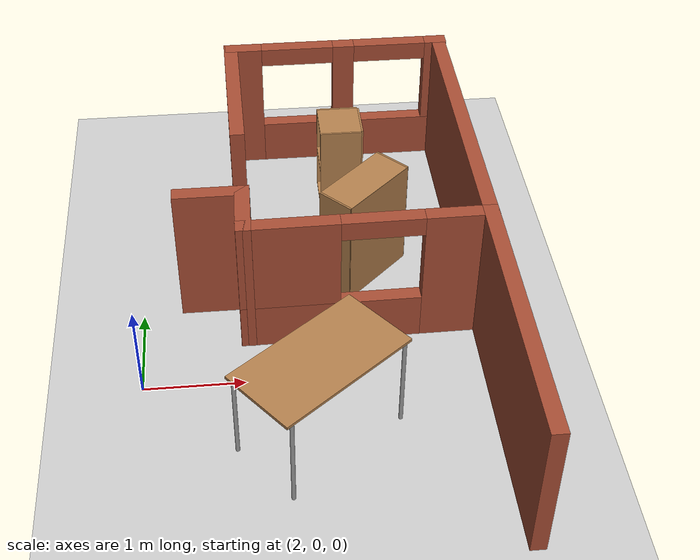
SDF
<sdf version="1.7">
 <world name="default">
  <model name="ground_plane">
   <static>1</static>
   <link name="link">
    <collision name="collision">
     <geometry><plane><normal>0 0 1</normal><size>100 100</size></plane></geometry>
     <surface><friction><ode><mu>100</mu><mu2>50</mu2></ode></friction></surface>
    </collision>
    <visual name="visual">
     <cast_shadows>0</cast_shadows>
     <geometry><plane><normal>0 0 1</normal><size>100 100</size></plane></geometry>
     <material>
      <script><uri>file://media/materials/scripts/gazebo.material</uri><name>Gazebo/Grey</name></script>
     </material>
    </visual>
   </link>
  </model>
  <model name="floorplan">
   <link name="Wall_63">
    <pose>0.045164 0.891664 0 0 -0 1.57834</pose>
    <visual name="Wall_63_Visual">
     <pose>0 0 0.75 0 -0 0</pose>
     <geometry><box><size>1.73707 0.15 1.5</size></box></geometry>
     <material>
      <script><uri>file://media/materials/scripts/gazebo.material</uri><name>Gazebo/Bricks</name></script>
      <ambient>1 1 1 1</ambient>
      <shader type="pixel"/>
     </material>
     <meta><layer>0</layer></meta>
    </visual>
    <collision name="Wall_63_Collision">
     <pose>0 0 0.75 0 -0 0</pose>
     <geometry><box><size>1.73707 0.15 1.5</size></box></geometry>
     <surface>
      <friction>
       <ode><mu>1</mu><mu2>1</mu2><fdir1>0 0 0</fdir1><slip1>0</slip1><slip2>0</slip2></ode>
       <torsional>
        <coefficient>1</coefficient>
        <patch_radius>0</patch_radius>
        <surface_radius>0</surface_radius>
        <use_patch_radius>1</use_patch_radius>
        <ode><slip>0</slip></ode>
       </torsional>
      </friction>
      <bounce><restitution_coefficient>0</restitution_coefficient><threshold>1e+06</threshold></bounce>
      <contact>
       <collide_without_contact>0</collide_without_contact>
       <collide_without_contact_bitmask>1</collide_without_contact_bitmask>
       <collide_bitmask>1</collide_bitmask>
       <ode>
        <soft_cfm>0</soft_cfm>
        <soft_erp>0.2</soft_erp>
        <kp>1e+13</kp>
        <kd>1</kd>
        <max_vel>0.01</max_vel>
        <min_depth>0</min_depth>
       </ode>
       <bullet>
        <split_impulse>1</split_impulse>
        <split_impulse_penetration_threshold>-0.01</split_impulse_penetration_threshold>
        <soft_cfm>0</soft_cfm>
        <soft_erp>0.2</soft_erp>
        <kp>1e+13</kp>
        <kd>1</kd>
       </bullet>
      </contact>
     </surface>
    </collision>
   </link>
   <link name="Wall_64">
    <pose>1.22115 1.68518 0 0 -0 0</pose>
    <visual name="Wall_64_Visual_0">
     <pose>-1.042 0 0.75 0 -0 0</pose>
     <geometry><box><size>0.404011 0.15 1.5</size></box></geometry>
     <material>
      <script><uri>file://media/materials/scripts/gazebo.material</uri><name>Gazebo/Bricks</name></script>
      <ambient>1 1 1 1</ambient>
      <shader type="pixel"/>
     </material>
     <meta><layer>0</layer></meta>
    </visual>
    <visual name="Wall_64_Visual_1">
     <pose>0.202005 0 0.25 0 -0 0</pose>
     <geometry><box><size>2.08399 0.15 0.5</size></box></geometry>
     <material>
      <script><uri>file://media/materials/scripts/gazebo.material</uri><name>Gazebo/Bricks</name></script>
      <ambient>1 1 1 1</ambient>
      <shader type="pixel"/>
     </material>
     <meta><layer>0</layer></meta>
    </visual>
    <visual name="Wall_64_Visual_2">
     <pose>0.078804 0 1 0 -0 0</pose>
     <geometry><box><size>0.237586 0.15 1</size></box></geometry>
     <material>
      <script><uri>file://media/materials/scripts/gazebo.material</uri><name>Gazebo/Bricks</name></script>
      <ambient>1 1 1 1</ambient>
      <shader type="pixel"/>
     </material>
     <meta><layer>0</layer></meta>
    </visual>
    <visual name="Wall_64_Visual_3">
     <pose>1.1208 0 1 0 -0 0</pose>
     <geometry><box><size>0.246403 0.15 1</size></box></geometry>
     <material>
      <script><uri>file://media/materials/scripts/gazebo.material</uri><name>Gazebo/Bricks</name></script>
      <ambient>1 1 1 1</ambient>
      <shader type="pixel"/>
     </material>
     <meta><layer>0</layer></meta>
    </visual>
    <visual name="Wall_64_Visual_4">
     <pose>-0.439989 0 1.4 0 -0 0</pose>
     <geometry><box><size>0.8 0.15 0.2</size></box></geometry>
     <material>
      <script><uri>file://media/materials/scripts/gazebo.material</uri><name>Gazebo/Bricks</name></script>
      <ambient>1 1 1 1</ambient>
      <shader type="pixel"/>
     </material>
     <meta><layer>0</layer></meta>
    </visual>
    <visual name="Wall_64_Visual_5">
     <pose>0.597597 0 1.4 0 -0 0</pose>
     <geometry><box><size>0.8 0.15 0.2</size></box></geometry>
     <material>
      <script><uri>file://media/materials/scripts/gazebo.material</uri><name>Gazebo/Bricks</name></script>
      <ambient>1 1 1 1</ambient>
      <shader type="pixel"/>
     </material>
     <meta><layer>0</layer></meta>
    </visual>
    <collision name="Wall_64_Collision_0">
     <pose>-1.042 0 0.75 0 -0 0</pose>
     <geometry><box><size>0.404011 0.15 1.5</size></box></geometry>
     <surface>
      <friction>
       <ode><mu>1</mu><mu2>1</mu2><fdir1>0 0 0</fdir1><slip1>0</slip1><slip2>0</slip2></ode>
       <torsional>
        <coefficient>1</coefficient>
        <patch_radius>0</patch_radius>
        <surface_radius>0</surface_radius>
        <use_patch_radius>1</use_patch_radius>
        <ode><slip>0</slip></ode>
       </torsional>
      </friction>
      <bounce><restitution_coefficient>0</restitution_coefficient><threshold>1e+06</threshold></bounce>
      <contact>
       <collide_without_contact>0</collide_without_contact>
       <collide_without_contact_bitmask>1</collide_without_contact_bitmask>
       <collide_bitmask>1</collide_bitmask>
       <ode>
        <soft_cfm>0</soft_cfm>
        <soft_erp>0.2</soft_erp>
        <kp>1e+13</kp>
        <kd>1</kd>
        <max_vel>0.01</max_vel>
        <min_depth>0</min_depth>
       </ode>
       <bullet>
        <split_impulse>1</split_impulse>
        <split_impulse_penetration_threshold>-0.01</split_impulse_penetration_threshold>
        <soft_cfm>0</soft_cfm>
        <soft_erp>0.2</soft_erp>
        <kp>1e+13</kp>
        <kd>1</kd>
       </bullet>
      </contact>
     </surface>
    </collision>
    <collision name="Wall_64_Collision_1">
     <pose>0.202005 0 0.25 0 -0 0</pose>
     <geometry><box><size>2.08399 0.15 0.5</size></box></geometry>
     <surface>
      <friction>
       <ode><mu>1</mu><mu2>1</mu2><fdir1>0 0 0</fdir1><slip1>0</slip1><slip2>0</slip2></ode>
       <torsional>
        <coefficient>1</coefficient>
        <patch_radius>0</patch_radius>
        <surface_radius>0</surface_radius>
        <use_patch_radius>1</use_patch_radius>
        <ode><slip>0</slip></ode>
       </torsional>
      </friction>
      <bounce><restitution_coefficient>0</restitution_coefficient><threshold>1e+06</threshold></bounce>
      <contact>
       <collide_without_contact>0</collide_without_contact>
       <collide_without_contact_bitmask>1</collide_without_contact_bitmask>
       <collide_bitmask>1</collide_bitmask>
       <ode>
        <soft_cfm>0</soft_cfm>
        <soft_erp>0.2</soft_erp>
        <kp>1e+13</kp>
        <kd>1</kd>
        <max_vel>0.01</max_vel>
        <min_depth>0</min_depth>
       </ode>
       <bullet>
        <split_impulse>1</split_impulse>
        <split_impulse_penetration_threshold>-0.01</split_impulse_penetration_threshold>
        <soft_cfm>0</soft_cfm>
        <soft_erp>0.2</soft_erp>
        <kp>1e+13</kp>
        <kd>1</kd>
       </bullet>
      </contact>
     </surface>
    </collision>
    <collision name="Wall_64_Collision_2">
     <pose>0.078804 0 1 0 -0 0</pose>
     <geometry><box><size>0.237586 0.15 1</size></box></geometry>
     <surface>
      <friction>
       <ode><mu>1</mu><mu2>1</mu2><fdir1>0 0 0</fdir1><slip1>0</slip1><slip2>0</slip2></ode>
       <torsional>
        <coefficient>1</coefficient>
        <patch_radius>0</patch_radius>
        <surface_radius>0</surface_radius>
        <use_patch_radius>1</use_patch_radius>
        <ode><slip>0</slip></ode>
       </torsional>
      </friction>
      <bounce><restitution_coefficient>0</restitution_coefficient><threshold>1e+06</threshold></bounce>
      <contact>
       <collide_without_contact>0</collide_without_contact>
       <collide_without_contact_bitmask>1</collide_without_contact_bitmask>
       <collide_bitmask>1</collide_bitmask>
       <ode>
        <soft_cfm>0</soft_cfm>
        <soft_erp>0.2</soft_erp>
        <kp>1e+13</kp>
        <kd>1</kd>
        <max_vel>0.01</max_vel>
        <min_depth>0</min_depth>
       </ode>
       <bullet>
        <split_impulse>1</split_impulse>
        <split_impulse_penetration_threshold>-0.01</split_impulse_penetration_threshold>
        <soft_cfm>0</soft_cfm>
        <soft_erp>0.2</soft_erp>
        <kp>1e+13</kp>
        <kd>1</kd>
       </bullet>
      </contact>
     </surface>
    </collision>
    <collision name="Wall_64_Collision_3">
     <pose>1.1208 0 1 0 -0 0</pose>
     <geometry><box><size>0.246403 0.15 1</size></box></geometry>
     <surface>
      <friction>
       <ode><mu>1</mu><mu2>1</mu2><fdir1>0 0 0</fdir1><slip1>0</slip1><slip2>0</slip2></ode>
       <torsional>
        <coefficient>1</coefficient>
        <patch_radius>0</patch_radius>
        <surface_radius>0</surface_radius>
        <use_patch_radius>1</use_patch_radius>
        <ode><slip>0</slip></ode>
       </torsional>
      </friction>
      <bounce><restitution_coefficient>0</restitution_coefficient><threshold>1e+06</threshold></bounce>
      <contact>
       <collide_without_contact>0</collide_without_contact>
       <collide_without_contact_bitmask>1</collide_without_contact_bitmask>
       <collide_bitmask>1</collide_bitmask>
       <ode>
        <soft_cfm>0</soft_cfm>
        <soft_erp>0.2</soft_erp>
        <kp>1e+13</kp>
        <kd>1</kd>
        <max_vel>0.01</max_vel>
        <min_depth>0</min_depth>
       </ode>
       <bullet>
        <split_impulse>1</split_impulse>
        <split_impulse_penetration_threshold>-0.01</split_impulse_penetration_threshold>
        <soft_cfm>0</soft_cfm>
        <soft_erp>0.2</soft_erp>
        <kp>1e+13</kp>
        <kd>1</kd>
       </bullet>
      </contact>
     </surface>
    </collision>
    <collision name="Wall_64_Collision_4">
     <pose>-0.439989 0 1.4 0 -0 0</pose>
     <geometry><box><size>0.8 0.15 0.2</size></box></geometry>
     <surface>
      <friction>
       <ode><mu>1</mu><mu2>1</mu2><fdir1>0 0 0</fdir1><slip1>0</slip1><slip2>0</slip2></ode>
       <torsional>
        <coefficient>1</coefficient>
        <patch_radius>0</patch_radius>
        <surface_radius>0</surface_radius>
        <use_patch_radius>1</use_patch_radius>
        <ode><slip>0</slip></ode>
       </torsional>
      </friction>
      <bounce><restitution_coefficient>0</restitution_coefficient><threshold>1e+06</threshold></bounce>
      <contact>
       <collide_without_contact>0</collide_without_contact>
       <collide_without_contact_bitmask>1</collide_without_contact_bitmask>
       <collide_bitmask>1</collide_bitmask>
       <ode>
        <soft_cfm>0</soft_cfm>
        <soft_erp>0.2</soft_erp>
        <kp>1e+13</kp>
        <kd>1</kd>
        <max_vel>0.01</max_vel>
        <min_depth>0</min_depth>
       </ode>
       <bullet>
        <split_impulse>1</split_impulse>
        <split_impulse_penetration_threshold>-0.01</split_impulse_penetration_threshold>
        <soft_cfm>0</soft_cfm>
        <soft_erp>0.2</soft_erp>
        <kp>1e+13</kp>
        <kd>1</kd>
       </bullet>
      </contact>
     </surface>
    </collision>
    <collision name="Wall_64_Collision_5">
     <pose>0.597597 0 1.4 0 -0 0</pose>
     <geometry><box><size>0.8 0.15 0.2</size></box></geometry>
     <surface>
      <friction>
       <ode><mu>1</mu><mu2>1</mu2><fdir1>0 0 0</fdir1><slip1>0</slip1><slip2>0</slip2></ode>
       <torsional>
        <coefficient>1</coefficient>
        <patch_radius>0</patch_radius>
        <surface_radius>0</surface_radius>
        <use_patch_radius>1</use_patch_radius>
        <ode><slip>0</slip></ode>
       </torsional>
      </friction>
      <bounce><restitution_coefficient>0</restitution_coefficient><threshold>1e+06</threshold></bounce>
      <contact>
       <collide_without_contact>0</collide_without_contact>
       <collide_without_contact_bitmask>1</collide_without_contact_bitmask>
       <collide_bitmask>1</collide_bitmask>
       <ode>
        <soft_cfm>0</soft_cfm>
        <soft_erp>0.2</soft_erp>
        <kp>1e+13</kp>
        <kd>1</kd>
        <max_vel>0.01</max_vel>
        <min_depth>0</min_depth>
       </ode>
       <bullet>
        <split_impulse>1</split_impulse>
        <split_impulse_penetration_threshold>-0.01</split_impulse_penetration_threshold>
        <soft_cfm>0</soft_cfm>
        <soft_erp>0.2</soft_erp>
        <kp>1e+13</kp>
        <kd>1</kd>
       </bullet>
      </contact>
     </surface>
    </collision>
   </link>
   <link name="Wall_65">
    <pose>2.38366 0.141664 0 0 0 -1.56659</pose>
    <visual name="Wall_65_Visual">
     <pose>0 0 0.75 0 -0 0</pose>
     <geometry><box><size>3.23706 0.15 1.5</size></box></geometry>
     <material>
      <script><uri>file://media/materials/scripts/gazebo.material</uri><name>Gazebo/Bricks</name></script>
      <ambient>1 1 1 1</ambient>
      <shader type="pixel"/>
     </material>
     <meta><layer>0</layer></meta>
    </visual>
    <collision name="Wall_65_Collision">
     <pose>0 0 0.75 0 -0 0</pose>
     <geometry><box><size>3.23706 0.15 1.5</size></box></geometry>
     <surface>
      <friction>
       <ode><mu>1</mu><mu2>1</mu2><fdir1>0 0 0</fdir1><slip1>0</slip1><slip2>0</slip2></ode>
       <torsional>
        <coefficient>1</coefficient>
        <patch_radius>0</patch_radius>
        <surface_radius>0</surface_radius>
        <use_patch_radius>1</use_patch_radius>
        <ode><slip>0</slip></ode>
       </torsional>
      </friction>
      <bounce><restitution_coefficient>0</restitution_coefficient><threshold>1e+06</threshold></bounce>
      <contact>
       <collide_without_contact>0</collide_without_contact>
       <collide_without_contact_bitmask>1</collide_without_contact_bitmask>
       <collide_bitmask>1</collide_bitmask>
       <ode>
        <soft_cfm>0</soft_cfm>
        <soft_erp>0.2</soft_erp>
        <kp>1e+13</kp>
        <kd>1</kd>
        <max_vel>0.01</max_vel>
        <min_depth>0</min_depth>
       </ode>
       <bullet>
        <split_impulse>1</split_impulse>
        <split_impulse_penetration_threshold>-0.01</split_impulse_penetration_threshold>
        <soft_cfm>0</soft_cfm>
        <soft_erp>0.2</soft_erp>
        <kp>1e+13</kp>
        <kd>1</kd>
       </bullet>
      </contact>
     </surface>
    </collision>
   </link>
   <link name="Wall_66">
    <pose>1.22115 -1.41335 0 0 0 -3.13176</pose>
    <visual name="Wall_66_Visual_0">
     <pose>-0.893824 0 0.75 0 -0 0</pose>
     <geometry><box><size>0.700692 0.15 1.5</size></box></geometry>
     <material>
      <script><uri>file://media/materials/scripts/gazebo.material</uri><name>Gazebo/Bricks</name></script>
      <ambient>1 1 1 1</ambient>
      <shader type="pixel"/>
     </material>
     <meta><layer>0</layer></meta>
    </visual>
    <visual name="Wall_66_Visual_1">
     <pose>0.350346 0 0.25 0 -0 0</pose>
     <geometry><box><size>1.78765 0.15 0.5</size></box></geometry>
     <material>
      <script><uri>file://media/materials/scripts/gazebo.material</uri><name>Gazebo/Bricks</name></script>
      <ambient>1 1 1 1</ambient>
      <shader type="pixel"/>
     </material>
     <meta><layer>0</layer></meta>
    </visual>
    <visual name="Wall_66_Visual_2">
     <pose>0.750346 0 1 0 -0 0</pose>
     <geometry><box><size>0.987649 0.15 1</size></box></geometry>
     <material>
      <script><uri>file://media/materials/scripts/gazebo.material</uri><name>Gazebo/Bricks</name></script>
      <ambient>1 1 1 1</ambient>
      <shader type="pixel"/>
     </material>
     <meta><layer>0</layer></meta>
    </visual>
    <visual name="Wall_66_Visual_3">
     <pose>-0.143478 0 1.4 0 -0 0</pose>
     <geometry><box><size>0.8 0.15 0.2</size></box></geometry>
     <material>
      <script><uri>file://media/materials/scripts/gazebo.material</uri><name>Gazebo/Bricks</name></script>
      <ambient>1 1 1 1</ambient>
      <shader type="pixel"/>
     </material>
     <meta><layer>0</layer></meta>
    </visual>
    <collision name="Wall_66_Collision_0">
     <pose>-0.893824 0 0.75 0 -0 0</pose>
     <geometry><box><size>0.700692 0.15 1.5</size></box></geometry>
     <surface>
      <friction>
       <ode><mu>1</mu><mu2>1</mu2><fdir1>0 0 0</fdir1><slip1>0</slip1><slip2>0</slip2></ode>
       <torsional>
        <coefficient>1</coefficient>
        <patch_radius>0</patch_radius>
        <surface_radius>0</surface_radius>
        <use_patch_radius>1</use_patch_radius>
        <ode><slip>0</slip></ode>
       </torsional>
      </friction>
      <bounce><restitution_coefficient>0</restitution_coefficient><threshold>1e+06</threshold></bounce>
      <contact>
       <collide_without_contact>0</collide_without_contact>
       <collide_without_contact_bitmask>1</collide_without_contact_bitmask>
       <collide_bitmask>1</collide_bitmask>
       <ode>
        <soft_cfm>0</soft_cfm>
        <soft_erp>0.2</soft_erp>
        <kp>1e+13</kp>
        <kd>1</kd>
        <max_vel>0.01</max_vel>
        <min_depth>0</min_depth>
       </ode>
       <bullet>
        <split_impulse>1</split_impulse>
        <split_impulse_penetration_threshold>-0.01</split_impulse_penetration_threshold>
        <soft_cfm>0</soft_cfm>
        <soft_erp>0.2</soft_erp>
        <kp>1e+13</kp>
        <kd>1</kd>
       </bullet>
      </contact>
     </surface>
    </collision>
    <collision name="Wall_66_Collision_1">
     <pose>0.350346 0 0.25 0 -0 0</pose>
     <geometry><box><size>1.78765 0.15 0.5</size></box></geometry>
     <surface>
      <friction>
       <ode><mu>1</mu><mu2>1</mu2><fdir1>0 0 0</fdir1><slip1>0</slip1><slip2>0</slip2></ode>
       <torsional>
        <coefficient>1</coefficient>
        <patch_radius>0</patch_radius>
        <surface_radius>0</surface_radius>
        <use_patch_radius>1</use_patch_radius>
        <ode><slip>0</slip></ode>
       </torsional>
      </friction>
      <bounce><restitution_coefficient>0</restitution_coefficient><threshold>1e+06</threshold></bounce>
      <contact>
       <collide_without_contact>0</collide_without_contact>
       <collide_without_contact_bitmask>1</collide_without_contact_bitmask>
       <collide_bitmask>1</collide_bitmask>
       <ode>
        <soft_cfm>0</soft_cfm>
        <soft_erp>0.2</soft_erp>
        <kp>1e+13</kp>
        <kd>1</kd>
        <max_vel>0.01</max_vel>
        <min_depth>0</min_depth>
       </ode>
       <bullet>
        <split_impulse>1</split_impulse>
        <split_impulse_penetration_threshold>-0.01</split_impulse_penetration_threshold>
        <soft_cfm>0</soft_cfm>
        <soft_erp>0.2</soft_erp>
        <kp>1e+13</kp>
        <kd>1</kd>
       </bullet>
      </contact>
     </surface>
    </collision>
    <collision name="Wall_66_Collision_2">
     <pose>0.750346 0 1 0 -0 0</pose>
     <geometry><box><size>0.987649 0.15 1</size></box></geometry>
     <surface>
      <friction>
       <ode><mu>1</mu><mu2>1</mu2><fdir1>0 0 0</fdir1><slip1>0</slip1><slip2>0</slip2></ode>
       <torsional>
        <coefficient>1</coefficient>
        <patch_radius>0</patch_radius>
        <surface_radius>0</surface_radius>
        <use_patch_radius>1</use_patch_radius>
        <ode><slip>0</slip></ode>
       </torsional>
      </friction>
      <bounce><restitution_coefficient>0</restitution_coefficient><threshold>1e+06</threshold></bounce>
      <contact>
       <collide_without_contact>0</collide_without_contact>
       <collide_without_contact_bitmask>1</collide_without_contact_bitmask>
       <collide_bitmask>1</collide_bitmask>
       <ode>
        <soft_cfm>0</soft_cfm>
        <soft_erp>0.2</soft_erp>
        <kp>1e+13</kp>
        <kd>1</kd>
        <max_vel>0.01</max_vel>
        <min_depth>0</min_depth>
       </ode>
       <bullet>
        <split_impulse>1</split_impulse>
        <split_impulse_penetration_threshold>-0.01</split_impulse_penetration_threshold>
        <soft_cfm>0</soft_cfm>
        <soft_erp>0.2</soft_erp>
        <kp>1e+13</kp>
        <kd>1</kd>
       </bullet>
      </contact>
     </surface>
    </collision>
    <collision name="Wall_66_Collision_3">
     <pose>-0.143478 0 1.4 0 -0 0</pose>
     <geometry><box><size>0.8 0.15 0.2</size></box></geometry>
     <surface>
      <friction>
       <ode><mu>1</mu><mu2>1</mu2><fdir1>0 0 0</fdir1><slip1>0</slip1><slip2>0</slip2></ode>
       <torsional>
        <coefficient>1</coefficient>
        <patch_radius>0</patch_radius>
        <surface_radius>0</surface_radius>
        <use_patch_radius>1</use_patch_radius>
        <ode><slip>0</slip></ode>
       </torsional>
      </friction>
      <bounce><restitution_coefficient>0</restitution_coefficient><threshold>1e+06</threshold></bounce>
      <contact>
       <collide_without_contact>0</collide_without_contact>
       <collide_without_contact_bitmask>1</collide_without_contact_bitmask>
       <collide_bitmask>1</collide_bitmask>
       <ode>
        <soft_cfm>0</soft_cfm>
        <soft_erp>0.2</soft_erp>
        <kp>1e+13</kp>
        <kd>1</kd>
        <max_vel>0.01</max_vel>
        <min_depth>0</min_depth>
       </ode>
       <bullet>
        <split_impulse>1</split_impulse>
        <split_impulse_penetration_threshold>-0.01</split_impulse_penetration_threshold>
        <soft_cfm>0</soft_cfm>
        <soft_erp>0.2</soft_erp>
        <kp>1e+13</kp>
        <kd>1</kd>
       </bullet>
      </contact>
     </surface>
    </collision>
   </link>
   <link name="Wall_67">
    <pose>0.057649 -1.15935 0 0 -0 1.55008</pose>
    <visual name="Wall_67_Visual">
     <pose>0 0 0.75 0 -0 0</pose>
     <geometry><box><size>0.681545 0.15 1.5</size></box></geometry>
     <material>
      <script><uri>file://media/materials/scripts/gazebo.material</uri><name>Gazebo/Bricks</name></script>
      <ambient>1 1 1 1</ambient>
      <shader type="pixel"/>
     </material>
     <meta><layer>0</layer></meta>
    </visual>
    <collision name="Wall_67_Collision">
     <pose>0 0 0.75 0 -0 0</pose>
     <geometry><box><size>0.681545 0.15 1.5</size></box></geometry>
     <surface>
      <friction>
       <ode><mu>1</mu><mu2>1</mu2><fdir1>0 0 0</fdir1><slip1>0</slip1><slip2>0</slip2></ode>
       <torsional>
        <coefficient>1</coefficient>
        <patch_radius>0</patch_radius>
        <surface_radius>0</surface_radius>
        <use_patch_radius>1</use_patch_radius>
        <ode><slip>0</slip></ode>
       </torsional>
      </friction>
      <bounce><restitution_coefficient>0</restitution_coefficient><threshold>1e+06</threshold></bounce>
      <contact>
       <collide_without_contact>0</collide_without_contact>
       <collide_without_contact_bitmask>1</collide_without_contact_bitmask>
       <collide_bitmask>1</collide_bitmask>
       <ode>
        <soft_cfm>0</soft_cfm>
        <soft_erp>0.2</soft_erp>
        <kp>1e+13</kp>
        <kd>1</kd>
        <max_vel>0.01</max_vel>
        <min_depth>0</min_depth>
       </ode>
       <bullet>
        <split_impulse>1</split_impulse>
        <split_impulse_penetration_threshold>-0.01</split_impulse_penetration_threshold>
        <soft_cfm>0</soft_cfm>
        <soft_erp>0.2</soft_erp>
        <kp>1e+13</kp>
        <kd>1</kd>
       </bullet>
      </contact>
     </surface>
    </collision>
   </link>
   <link name="Wall_69">
    <pose>-0.236851 -0.893851 0 0 -0 3.14159</pose>
    <visual name="Wall_69_Visual">
     <pose>0 0 0.75 0 -0 0</pose>
     <geometry><box><size>0.75 0.15 1.5</size></box></geometry>
     <material>
      <script><uri>file://media/materials/scripts/gazebo.material</uri><name>Gazebo/Bricks</name></script>
      <ambient>1 1 1 1</ambient>
      <shader type="pixel"/>
     </material>
     <meta><layer>0</layer></meta>
    </visual>
    <collision name="Wall_69_Collision">
     <pose>0 0 0.75 0 -0 0</pose>
     <geometry><box><size>0.75 0.15 1.5</size></box></geometry>
     <surface>
      <friction>
       <ode><mu>1</mu><mu2>1</mu2><fdir1>0 0 0</fdir1><slip1>0</slip1><slip2>0</slip2></ode>
       <torsional>
        <coefficient>1</coefficient>
        <patch_radius>0</patch_radius>
        <surface_radius>0</surface_radius>
        <use_patch_radius>1</use_patch_radius>
        <ode><slip>0</slip></ode>
       </torsional>
      </friction>
      <bounce><restitution_coefficient>0</restitution_coefficient><threshold>1e+06</threshold></bounce>
      <contact>
       <collide_without_contact>0</collide_without_contact>
       <collide_without_contact_bitmask>1</collide_without_contact_bitmask>
       <collide_bitmask>1</collide_bitmask>
       <ode>
        <soft_cfm>0</soft_cfm>
        <soft_erp>0.2</soft_erp>
        <kp>1e+13</kp>
        <kd>1</kd>
        <max_vel>0.01</max_vel>
        <min_depth>0</min_depth>
       </ode>
       <bullet>
        <split_impulse>1</split_impulse>
        <split_impulse_penetration_threshold>-0.01</split_impulse_penetration_threshold>
        <soft_cfm>0</soft_cfm>
        <soft_erp>0.2</soft_erp>
        <kp>1e+13</kp>
        <kd>1</kd>
       </bullet>
      </contact>
     </surface>
    </collision>
   </link>
   <link name="Wall_83">
    <pose>2.38765 -2.74035 0 0 -0 1.56893</pose>
    <visual name="Wall_83_Visual">
     <pose>0 0 0.75 0 -0 0</pose>
     <geometry><box><size>2.82701 0.15 1.5</size></box></geometry>
     <material>
      <script><uri>file://media/materials/scripts/gazebo.material</uri><name>Gazebo/Bricks</name></script>
      <ambient>1 1 1 1</ambient>
      <shader type="pixel"/>
     </material>
     <meta><layer>0</layer></meta>
    </visual>
    <collision name="Wall_83_Collision">
     <pose>0 0 0.75 0 -0 0</pose>
     <geometry><box><size>2.82701 0.15 1.5</size></box></geometry>
     <surface>
      <friction>
       <ode><mu>1</mu><mu2>1</mu2><fdir1>0 0 0</fdir1><slip1>0</slip1><slip2>0</slip2></ode>
       <torsional>
        <coefficient>1</coefficient>
        <patch_radius>0</patch_radius>
        <surface_radius>0</surface_radius>
        <use_patch_radius>1</use_patch_radius>
        <ode><slip>0</slip></ode>
       </torsional>
      </friction>
      <bounce><restitution_coefficient>0</restitution_coefficient><threshold>1e+06</threshold></bounce>
      <contact>
       <collide_without_contact>0</collide_without_contact>
       <collide_without_contact_bitmask>1</collide_without_contact_bitmask>
       <collide_bitmask>1</collide_bitmask>
       <ode>
        <soft_cfm>0</soft_cfm>
        <soft_erp>0.2</soft_erp>
        <kp>1e+13</kp>
        <kd>1</kd>
        <max_vel>0.01</max_vel>
        <min_depth>0</min_depth>
       </ode>
       <bullet>
        <split_impulse>1</split_impulse>
        <split_impulse_penetration_threshold>-0.01</split_impulse_penetration_threshold>
        <soft_cfm>0</soft_cfm>
        <soft_erp>0.2</soft_erp>
        <kp>1e+13</kp>
        <kd>1</kd>
       </bullet>
      </contact>
     </surface>
    </collision>
   </link>
   <static>1</static>
   <pose>3 2 0 0 -0 0</pose>
  </model>
  <model name="bookshelf">
   <static>1</static>
   <link name="link">
    <inertial><mass>1</mass></inertial>
    <collision name="back">
     <pose>0 0.005 0.6 0 -0 0</pose>
     <geometry><box><size>0.9 0.01 1.2</size></box></geometry>
    </collision>
    <visual name="visual1">
     <pose>0 0.005 0.6 0 -0 0</pose>
     <geometry><box><size>0.9 0.01 1.2</size></box></geometry>
     <material>
      <script><uri>file://media/materials/scripts/gazebo.material</uri><name>Gazebo/Wood</name></script>
     </material>
    </visual>
    <collision name="left_side">
     <pose>0.45 -0.195 0.6 0 -0 0</pose>
     <geometry><box><size>0.02 0.4 1.2</size></box></geometry>
    </collision>
    <visual name="visual2">
     <pose>0.45 -0.195 0.6 0 -0 0</pose>
     <geometry><box><size>0.02 0.4 1.2</size></box></geometry>
     <material>
      <script><uri>file://media/materials/scripts/gazebo.material</uri><name>Gazebo/Wood</name></script>
     </material>
    </visual>
    <collision name="right_side">
     <pose>-0.45 -0.195 0.6 0 -0 0</pose>
     <geometry><box><size>0.02 0.4 1.2</size></box></geometry>
    </collision>
    <visual name="visual3">
     <pose>-0.45 -0.195 0.6 0 -0 0</pose>
     <geometry><box><size>0.02 0.4 1.2</size></box></geometry>
     <material>
      <script><uri>file://media/materials/scripts/gazebo.material</uri><name>Gazebo/Wood</name></script>
     </material>
    </visual>
    <collision name="bottom">
     <pose>0 -0.195 0.03 0 -0 0</pose>
     <geometry><box><size>0.88 0.4 0.06</size></box></geometry>
    </collision>
    <visual name="visual4">
     <pose>0 -0.195 0.03 0 -0 0</pose>
     <geometry><box><size>0.88 0.4 0.06</size></box></geometry>
     <material>
      <script><uri>file://media/materials/scripts/gazebo.material</uri><name>Gazebo/Wood</name></script>
     </material>
    </visual>
    <collision name="top">
     <pose>0 -0.195 1.19 0 -0 0</pose>
     <geometry><box><size>0.88 0.4 0.02</size></box></geometry>
    </collision>
    <visual name="visual5">
     <pose>0 -0.195 1.19 0 -0 0</pose>
     <geometry><box><size>0.88 0.4 0.02</size></box></geometry>
     <material>
      <script><uri>file://media/materials/scripts/gazebo.material</uri><name>Gazebo/Wood</name></script>
     </material>
    </visual>
    <collision name="low_shelf">
     <pose>0 -0.195 0.43 0 -0 0</pose>
     <geometry><box><size>0.88 0.4 0.02</size></box></geometry>
    </collision>
    <visual name="visual6">
     <pose>0 -0.195 0.43 0 -0 0</pose>
     <geometry><box><size>0.88 0.4 0.02</size></box></geometry>
     <material>
      <script><uri>file://media/materials/scripts/gazebo.material</uri><name>Gazebo/Wood</name></script>
     </material>
    </visual>
    <collision name="high_shelf">
     <pose>0 -0.195 0.8 0 -0 0</pose>
     <geometry><box><size>0.88 0.4 0.02</size></box></geometry>
    </collision>
    <visual name="visual7">
     <pose>0 -0.195 0.8 0 -0 0</pose>
     <geometry><box><size>0.88 0.4 0.02</size></box></geometry>
     <material>
      <script><uri>file://media/materials/scripts/gazebo.material</uri><name>Gazebo/Wood</name></script>
     </material>
    </visual>
   </link>
   <pose>4.44159 1.41114 0 0 0 -2.37471</pose>
  </model>
  <model name="cabinet">
   <static>1</static>
   <link name="cabinet_bottom_plate">
    <inertial>
     <pose>0 0 -1 0 -0 0</pose>
     <inertia><ixx>2.05</ixx><ixy>0</ixy><ixz>0</ixz><iyy>2.05</iyy><iyz>0</iyz><izz>2.05</izz></inertia>
     <mass>25</mass>
    </inertial>
    <collision name="cabinet_bottom_plate_geom">
     <pose>0 0 0.01 0 -0 0</pose>
     <geometry><box><size>0.45 0.45 0.02</size></box></geometry>
    </collision>
    <visual name="cabinet_bottom_plate_geom_visual">
     <pose>0 0 0.01 0 -0 0</pose>
     <geometry><box><size>0.45 0.45 0.02</size></box></geometry>
     <material>
      <script><uri>file://media/materials/scripts/gazebo.material</uri><name>Gazebo/Wood</name></script>
     </material>
    </visual>
    <collision name="cabinet_bottom_plate_geom_cabinet_back_plate">
     <pose>0.235 0 0.51 0 -0 0</pose>
     <geometry><box><size>0.02 0.45 1.02</size></box></geometry>
    </collision>
    <visual name="cabinet_bottom_plate_geom_cabinet_back_plate_visual">
     <pose>0.235 0 0.51 0 -0 0</pose>
     <geometry><box><size>0.02 0.45 1.02</size></box></geometry>
     <material>
      <script><uri>file://media/materials/scripts/gazebo.material</uri><name>Gazebo/Wood</name></script>
     </material>
    </visual>
    <collision name="cabinet_bottom_plate_geom_cabinet_left_plate">
     <pose>0 0.235 0.51 0 -0 0</pose>
     <geometry><box><size>0.45 0.02 1.02</size></box></geometry>
    </collision>
    <visual name="cabinet_bottom_plate_geom_cabinet_left_plate_visual">
     <pose>0 0.235 0.51 0 -0 0</pose>
     <geometry><box><size>0.45 0.02 1.02</size></box></geometry>
     <material>
      <script><uri>file://media/materials/scripts/gazebo.material</uri><name>Gazebo/Wood</name></script>
     </material>
    </visual>
    <collision name="cabinet_bottom_plate_geom_cabinet_middle_plate">
     <pose>0 0 0.51 0 -0 0</pose>
     <geometry><box><size>0.45 0.45 0.02</size></box></geometry>
    </collision>
    <visual name="cabinet_bottom_plate_geom_cabinet_middle_plate_visual">
     <pose>0 0 0.51 0 -0 0</pose>
     <geometry><box><size>0.45 0.45 0.02</size></box></geometry>
     <material>
      <script><uri>file://media/materials/scripts/gazebo.material</uri><name>Gazebo/Wood</name></script>
     </material>
    </visual>
    <collision name="cabinet_bottom_plate_geom_cabinet_right_plate">
     <pose>0 -0.235 0.51 0 -0 0</pose>
     <geometry><box><size>0.45 0.02 1.02</size></box></geometry>
    </collision>
    <visual name="cabinet_bottom_plate_geom_cabinet_right_plate_visual">
     <pose>0 -0.235 0.51 0 -0 0</pose>
     <geometry><box><size>0.45 0.02 1.02</size></box></geometry>
     <material>
      <script><uri>file://media/materials/scripts/gazebo.material</uri><name>Gazebo/Wood</name></script>
     </material>
    </visual>
    <collision name="cabinet_bottom_plate_geom_cabinet_top_plate">
     <pose>0 0 1.01 0 -0 0</pose>
     <geometry><box><size>0.45 0.45 0.02</size></box></geometry>
    </collision>
    <visual name="cabinet_bottom_plate_geom_cabinet_top_plate_visual">
     <pose>0 0 1.01 0 -0 0</pose>
     <geometry><box><size>0.45 0.45 0.02</size></box></geometry>
     <material>
      <script><uri>file://media/materials/scripts/gazebo.material</uri><name>Gazebo/Wood</name></script>
     </material>
    </visual>
   </link>
   <pose>4.17812 2.86795 0 0 -0 0</pose>
  </model>
  <model name="table">
   <static>1</static>
   <link name="link">
    <collision name="surface">
     <pose>0 0 1 0 -0 0</pose>
     <geometry><box><size>1.5 0.8 0.03</size></box></geometry>
     <surface><friction><ode><mu>0.6</mu><mu2>0.6</mu2></ode></friction></surface>
    </collision>
    <visual name="visual1">
     <pose>0 0 1 0 -0 0</pose>
     <geometry><box><size>1.5 0.8 0.03</size></box></geometry>
     <material>
      <script><uri>file://media/materials/scripts/gazebo.material</uri><name>Gazebo/Wood</name></script>
     </material>
    </visual>
    <collision name="front_left_leg">
     <pose>0.68 0.38 0.5 0 -0 0</pose>
     <geometry><cylinder><radius>0.02</radius><length>1</length></cylinder></geometry>
    </collision>
    <visual name="front_left_leg">
     <pose>0.68 0.38 0.5 0 -0 0</pose>
     <geometry><cylinder><radius>0.02</radius><length>1</length></cylinder></geometry>
     <material>
      <script><uri>file://media/materials/scripts/gazebo.material</uri><name>Gazebo/Grey</name></script>
     </material>
    </visual>
    <collision name="front_right_leg">
     <pose>0.68 -0.38 0.5 0 -0 0</pose>
     <geometry><cylinder><radius>0.02</radius><length>1</length></cylinder></geometry>
    </collision>
    <visual name="front_right_leg">
     <pose>0.68 -0.38 0.5 0 -0 0</pose>
     <geometry><cylinder><radius>0.02</radius><length>1</length></cylinder></geometry>
     <material>
      <script><uri>file://media/materials/scripts/gazebo.material</uri><name>Gazebo/Grey</name></script>
     </material>
    </visual>
    <collision name="back_right_leg">
     <pose>-0.68 -0.38 0.5 0 -0 0</pose>
     <geometry><cylinder><radius>0.02</radius><length>1</length></cylinder></geometry>
    </collision>
    <visual name="back_right_leg">
     <pose>-0.68 -0.38 0.5 0 -0 0</pose>
     <geometry><cylinder><radius>0.02</radius><length>1</length></cylinder></geometry>
     <material>
      <script><uri>file://media/materials/scripts/gazebo.material</uri><name>Gazebo/Grey</name></script>
     </material>
    </visual>
    <collision name="back_left_leg">
     <pose>-0.68 0.38 0.5 0 -0 0</pose>
     <geometry><cylinder><radius>0.02</radius><length>1</length></cylinder></geometry>
    </collision>
    <visual name="back_left_leg">
     <pose>-0.68 0.38 0.5 0 -0 0</pose>
     <geometry><cylinder><radius>0.02</radius><length>1</length></cylinder></geometry>
     <material>
      <script><uri>file://media/materials/scripts/gazebo.material</uri><name>Gazebo/Grey</name></script>
     </material>
    </visual>
   </link>
   <pose>3.65554 -0.702786 0 0 -0 0.669435</pose>
  </model>
 </world>
</sdf>
